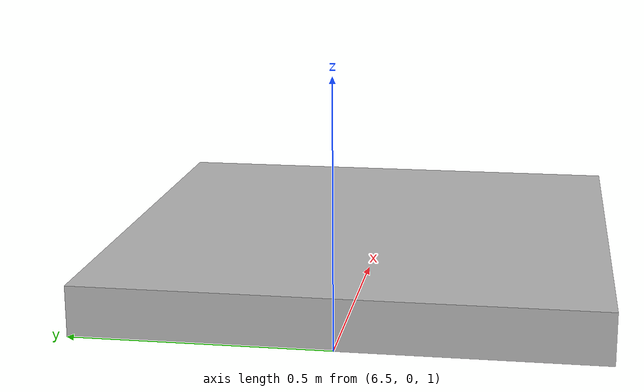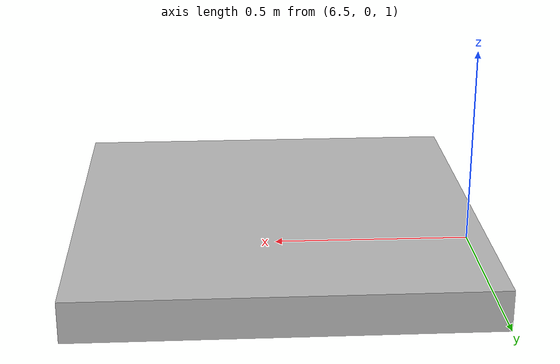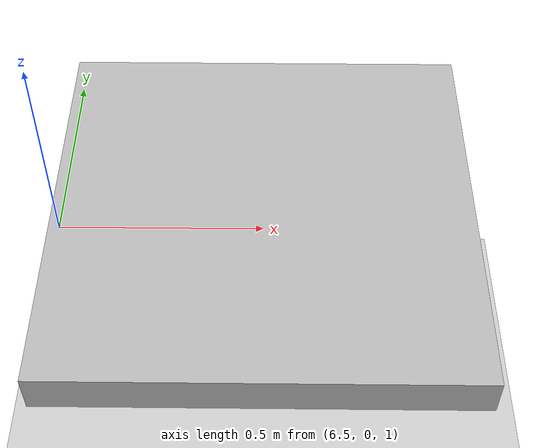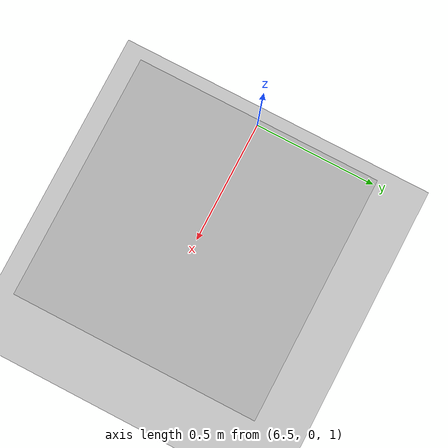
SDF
<?xml version="1.0" ?>
<sdf version="1.4">
  <world name="default">
    <include>
      <uri>model://ground_plane</uri>
    </include>
    <include>
      <uri>model://sun</uri>
    </include>

    <include>
      <uri>model://landing_pad</uri>
      <pose> 7 0 1 0 0 0 </pose>
    </include>

    <!-- Only one ROS interface plugin is required per world, as any other plugin can connect a Gazebo
         topic to a ROS topic (or vise versa). -->
    <plugin name="ros_interface_plugin" filename="librotors_gazebo_ros_interface_plugin.so"/>

    <spherical_coordinates>
      <surface_model>EARTH_WGS84</surface_model>
      <latitude_deg>47.3667</latitude_deg>
      <longitude_deg>8.5500</longitude_deg>
      <elevation>500.0</elevation>
      <heading_deg>0</heading_deg>
    </spherical_coordinates>
    <physics type='ode'>
      <ode>
        <solver>
          <type>quick</type>
          <iters>1000</iters>
          <sor>1.3</sor>
        </solver>
        <constraints>
          <cfm>0</cfm>
          <erp>0.2</erp>
          <contact_max_correcting_vel>100</contact_max_correcting_vel>
          <contact_surface_layer>0.001</contact_surface_layer>
        </constraints>
      </ode>
      <max_step_size>0.01</max_step_size>
      <real_time_factor>1</real_time_factor>
      <real_time_update_rate>100</real_time_update_rate>
      <gravity>0 0 -9.8</gravity>
    </physics>
  </world>
</sdf>

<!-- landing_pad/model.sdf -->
<sdf version='1.7'>
  <model name='landing_pad'>
    <link name='link_0'>
      <inertial>
        <mass>1</mass>
        <inertia>
          <ixx>0.166667</ixx>
          <ixy>0</ixy>
          <ixz>0</ixz>
          <iyy>0.166667</iyy>
          <iyz>0</iyz>
          <izz>0.166667</izz>
        </inertia>
        <pose>0 0 0 0 -0 0</pose>
      </inertial>
      <pose>0 0 0 0 -0 0</pose>
      <gravity>1</gravity>
      <self_collide>0</self_collide>
      <kinematic>0</kinematic>
      <enable_wind>0</enable_wind>
      <visual name='visual'>
        <pose>0 0 0 0 -0 0</pose>
        <geometry>
          <mesh>
            <uri>model://landing_pad/landing.dae</uri>
            <!-- scale of dae fime : 1m 1m 2m-->
            <scale>0.5 0.5 0.025</scale>
          </mesh>
        </geometry>
        <transparency>0</transparency>
        <cast_shadows>1</cast_shadows>
      </visual>
      <collision name='collision'>
        <laser_retro>0</laser_retro>
        <max_contacts>10</max_contacts>
        <pose>0 0 0 0 -0 0</pose>
        <geometry>
          <mesh>
            <uri>model://landing_pad/landing.dae</uri>
            <!-- scale of dae fime : 1m 1m 2m-->
            <scale>0.5 0.5 0.025</scale>
          </mesh>
        </geometry>
        <surface>
          <friction>
            <ode>
              <mu>1</mu>
              <mu2>1</mu2>
              <fdir1>0 0 0</fdir1>
              <slip1>0</slip1>
              <slip2>0</slip2>
            </ode>
            <torsional>
              <coefficient>1</coefficient>
              <patch_radius>0</patch_radius>
              <surface_radius>0</surface_radius>
              <use_patch_radius>1</use_patch_radius>
              <ode>
                <slip>0</slip>
              </ode>
            </torsional>
          </friction>
          <bounce>
            <restitution_coefficient>0</restitution_coefficient>
            <threshold>1e+06</threshold>
          </bounce>
          <contact>
            <collide_without_contact>0</collide_without_contact>
            <collide_without_contact_bitmask>1</collide_without_contact_bitmask>
            <collide_bitmask>1</collide_bitmask>
            <ode>
              <soft_cfm>0</soft_cfm>
              <soft_erp>0.2</soft_erp>
              <kp>1e+13</kp>
              <kd>1</kd>
              <max_vel>0.01</max_vel>
              <min_depth>0</min_depth>
            </ode>
            <bullet>
              <split_impulse>1</split_impulse>
              <split_impulse_penetration_threshold>-0.01</split_impulse_penetration_threshold>
              <soft_cfm>0</soft_cfm>
              <soft_erp>0.2</soft_erp>
              <kp>1e+13</kp>
              <kd>1</kd>
            </bullet>
          </contact>
        </surface>
      </collision>
    </link>
    <static>1</static>
    <allow_auto_disable>1</allow_auto_disable>
  </model>
</sdf>
